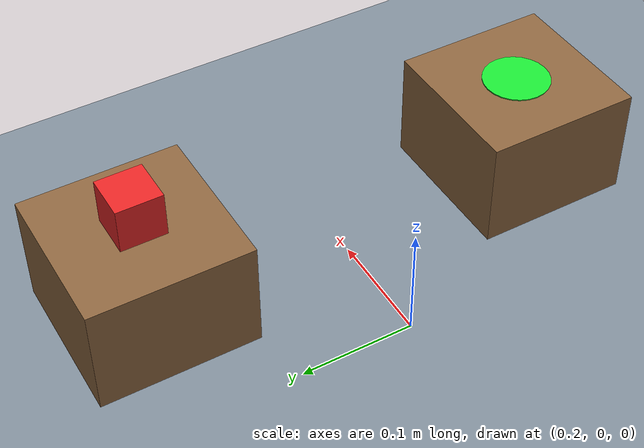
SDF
<?xml version="1.0"?>
<sdf version="1.8">
  <world name="pick_place">
    <physics name="1ms" type="ignored">
      <max_step_size>0.001</max_step_size>
      <real_time_factor>1.0</real_time_factor>
    </physics>
    <plugin filename="ignition-gazebo-physics-system" name="ignition::gazebo::systems::Physics"/>
    <plugin filename="ignition-gazebo-user-commands-system" name="ignition::gazebo::systems::UserCommands"/>
    <plugin filename="ignition-gazebo-scene-broadcaster-system" name="ignition::gazebo::systems::SceneBroadcaster"/>

    <light type="directional" name="sun">
      <cast_shadows>true</cast_shadows>
      <pose>0 0 10 0 0 0</pose>
      <diffuse>0.9 0.9 0.9 1</diffuse>
      <specular>0.2 0.2 0.2 1</specular>
      <direction>-0.4 0.2 -0.9</direction>
    </light>

    <model name="ground_plane">
      <static>true</static>
      <link name="link">
        <collision name="collision">
          <geometry><plane><normal>0 0 1</normal><size>10 10</size></plane></geometry>
        </collision>
        <visual name="visual">
          <geometry><plane><normal>0 0 1</normal><size>10 10</size></plane></geometry>
          <material>
            <ambient>0.5 0.55 0.6 1</ambient>
            <diffuse>0.5 0.55 0.6 1</diffuse>
          </material>
        </visual>
      </link>
    </model>

    <!-- Same layout as the MuJoCo demo: tables at (0.32, +-0.18), 0.1 m high -->
    <model name="table_pick">
      <static>true</static>
      <pose>0.32 0.18 0.05 0 0 0</pose>
      <link name="link">
        <collision name="collision"><geometry><box><size>0.14 0.14 0.1</size></box></geometry></collision>
        <visual name="visual">
          <geometry><box><size>0.14 0.14 0.1</size></box></geometry>
          <material><ambient>0.55 0.4 0.25 1</ambient><diffuse>0.55 0.4 0.25 1</diffuse></material>
        </visual>
      </link>
    </model>

    <model name="table_place">
      <static>true</static>
      <pose>0.32 -0.18 0.05 0 0 0</pose>
      <link name="link">
        <collision name="collision"><geometry><box><size>0.14 0.14 0.1</size></box></geometry></collision>
        <visual name="visual">
          <geometry><box><size>0.14 0.14 0.1</size></box></geometry>
          <material><ambient>0.55 0.4 0.25 1</ambient><diffuse>0.55 0.4 0.25 1</diffuse></material>
        </visual>
        <visual name="target">
          <pose>0 0 0.0505 0 0 0</pose>
          <geometry><cylinder><radius>0.03</radius><length>0.001</length></cylinder></geometry>
          <material><ambient>0.1 0.9 0.2 1</ambient><diffuse>0.1 0.9 0.2 1</diffuse></material>
        </visual>
      </link>
    </model>

    <model name="cube">
      <pose>0.32 0.18 0.12 0 0 0</pose>
      <link name="link">
        <inertial>
          <mass>0.05</mass>
          <inertia><ixx>1.33e-5</ixx><iyy>1.33e-5</iyy><izz>1.33e-5</izz></inertia>
        </inertial>
        <collision name="collision">
          <geometry><box><size>0.04 0.04 0.04</size></box></geometry>
          <surface>
            <friction><ode><mu>2.0</mu><mu2>2.0</mu2></ode></friction>
            <contact><ode><kp>1000000</kp><kd>100</kd><min_depth>0.001</min_depth></ode></contact>
          </surface>
        </collision>
        <visual name="visual">
          <geometry><box><size>0.04 0.04 0.04</size></box></geometry>
          <material><ambient>0.9 0.15 0.15 1</ambient><diffuse>0.9 0.15 0.15 1</diffuse></material>
        </visual>
      </link>
    </model>
  </world>
</sdf>
